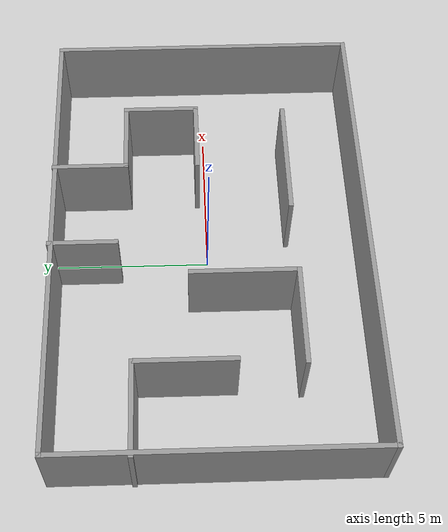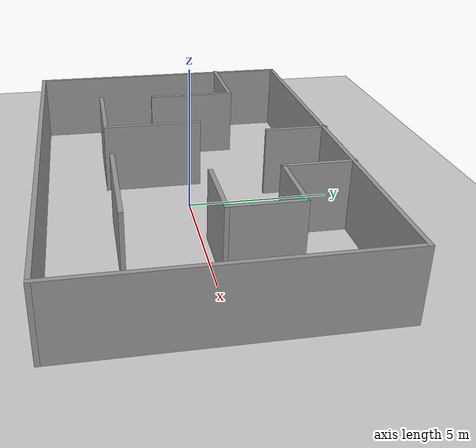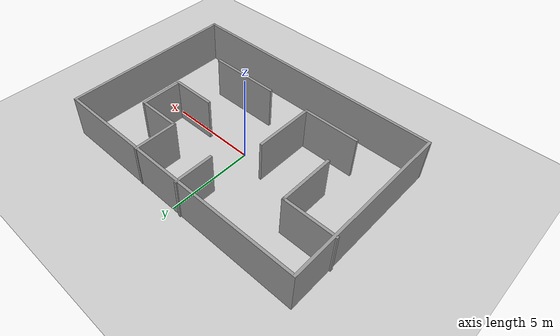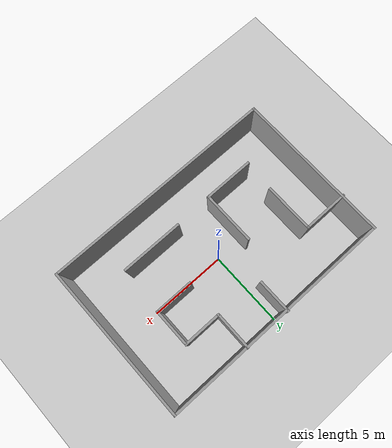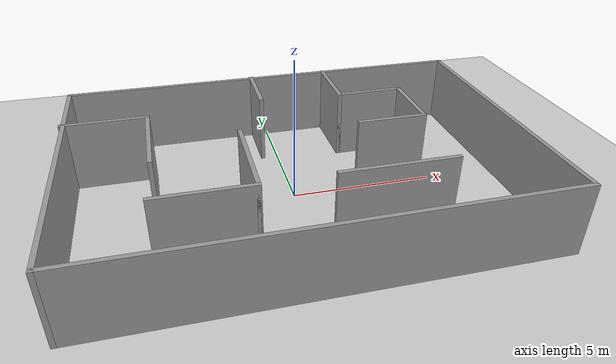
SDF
<sdf version="1.7">
 <world name="default">
  <light name="sun" type="directional">
   <pose>0 0 10 0 -0 0</pose>
   <diffuse>0.8 0.8 0.8 1</diffuse>
   <specular>0.2 0.2 0.2 1</specular>
   <attenuation>
    <range>1000</range>
    <constant>0.9</constant>
    <linear>0.01</linear>
    <quadratic>0.001</quadratic>
   </attenuation>
   <direction>-0.5 0.1 -0.9</direction>
   <spot><inner_angle>0</inner_angle><outer_angle>0</outer_angle><falloff>0</falloff></spot>
  </light>
  <model name="ground_plane">
   <static>1</static>
   <link name="link">
    <collision name="collision">
     <geometry><plane><normal>0 0 1</normal><size>100 100</size></plane></geometry>
     <surface><friction><ode><mu>100</mu><mu2>50</mu2></ode></friction></surface>
    </collision>
    <visual name="visual">
     <cast_shadows>0</cast_shadows>
     <geometry><plane><normal>0 0 1</normal><size>100 100</size></plane></geometry>
     <material>
      <script><uri>file://media/materials/scripts/gazebo.material</uri><name>Gazebo/Grey</name></script>
     </material>
    </visual>
   </link>
  </model>
  <gravity>0 0 -9.8</gravity>
  <magnetic_field>6e-06 2.3e-05 -4.2e-05</magnetic_field>
  <atmosphere type="adiabatic"/>
  <physics type="ode">
   <max_step_size>0.001</max_step_size>
   <real_time_factor>1</real_time_factor>
   <real_time_update_rate>1000</real_time_update_rate>
  </physics>
  <scene><ambient>0.4 0.4 0.4 1</ambient><background>0.7 0.7 0.7 1</background><shadows>1</shadows></scene>
  <audio><device>default</device></audio>
  <spherical_coordinates>
   <surface_model>EARTH_WGS84</surface_model>
   <latitude_deg>0</latitude_deg>
   <longitude_deg>0</longitude_deg>
   <elevation>0</elevation>
   <heading_deg>0</heading_deg>
  </spherical_coordinates>
  <model name="MAZE_ROOM">
   <pose>0.018298 -0.024411 0 0 -0 0</pose>
   <link name="Wall_0">
    <collision name="Wall_0_Collision">
     <geometry><box><size>15.15 0.15 2.5</size></box></geometry>
     <pose>0 0 1.25 0 -0 0</pose>
    </collision>
    <visual name="Wall_0_Visual">
     <pose>0 0 1.25 0 -0 0</pose>
     <geometry><box><size>15.15 0.15 2.5</size></box></geometry>
     <material>
      <script><uri>file://media/materials/scripts/gazebo.material</uri><name>Gazebo/Grey</name></script>
      <ambient>1 1 1 1</ambient>
     </material>
     <meta><layer>0</layer></meta>
    </visual>
    <pose>0.039211 4.96906 0 0 -0 0</pose>
   </link>
   <link name="Wall_1">
    <collision name="Wall_1_Collision">
     <geometry><box><size>10.15 0.15 2.5</size></box></geometry>
     <pose>0 0 1.25 0 -0 0</pose>
    </collision>
    <visual name="Wall_1_Visual">
     <pose>0 0 1.25 0 -0 0</pose>
     <geometry><box><size>10.15 0.15 2.5</size></box></geometry>
     <material>
      <script><uri>file://media/materials/scripts/gazebo.material</uri><name>Gazebo/Grey</name></script>
      <ambient>1 1 1 1</ambient>
     </material>
     <meta><layer>0</layer></meta>
    </visual>
    <pose>7.53921 -0.030941 0 0 -0 -1.5708</pose>
   </link>
   <link name="Wall_12">
    <collision name="Wall_12_Collision">
     <geometry><box><size>4 0.15 2.5</size></box></geometry>
     <pose>0 0 1.25 0 -0 0</pose>
    </collision>
    <visual name="Wall_12_Visual">
     <pose>0 0 1.25 0 -0 0</pose>
     <geometry><box><size>4 0.15 2.5</size></box></geometry>
     <material>
      <script><uri>file://media/materials/scripts/gazebo.material</uri><name>Gazebo/Grey</name></script>
      <ambient>1 1 1 1</ambient>
     </material>
     <meta><layer>0</layer></meta>
    </visual>
    <pose>2.61903 -2.65342 0 0 -0 0</pose>
   </link>
   <link name="Wall_14">
    <collision name="Wall_14_Collision">
     <geometry><box><size>2.5 0.15 2.5</size></box></geometry>
     <pose>0 0 1.25 0 -0 0</pose>
    </collision>
    <visual name="Wall_14_Visual">
     <pose>0 0 1.25 0 -0 0</pose>
     <geometry><box><size>2.5 0.15 2.5</size></box></geometry>
     <material>
      <script><uri>file://media/materials/scripts/gazebo.material</uri><name>Gazebo/Grey</name></script>
      <ambient>1 1 1 1</ambient>
     </material>
     <meta><layer>0</layer></meta>
    </visual>
    <pose>2.37499 3.82164 0 0 -0 -1.5708</pose>
   </link>
   <link name="Wall_15">
    <collision name="Wall_15_Collision">
     <geometry><box><size>2.5 0.15 2.5</size></box></geometry>
     <pose>0 0 1.25 0 -0 0</pose>
    </collision>
    <visual name="Wall_15_Visual">
     <pose>0 0 1.25 0 -0 0</pose>
     <geometry><box><size>2.5 0.15 2.5</size></box></geometry>
     <material>
      <script><uri>file://media/materials/scripts/gazebo.material</uri><name>Gazebo/Grey</name></script>
      <ambient>1 1 1 1</ambient>
     </material>
     <meta><layer>0</layer></meta>
    </visual>
    <pose>3.54999 2.64664 0 0 -0 0</pose>
   </link>
   <link name="Wall_16">
    <collision name="Wall_16_Collision">
     <geometry><box><size>2.5 0.15 2.5</size></box></geometry>
     <pose>0 0 1.25 0 -0 0</pose>
    </collision>
    <visual name="Wall_16_Visual">
     <pose>0 0 1.25 0 -0 0</pose>
     <geometry><box><size>2.5 0.15 2.5</size></box></geometry>
     <material>
      <script><uri>file://media/materials/scripts/gazebo.material</uri><name>Gazebo/Grey</name></script>
      <ambient>1 1 1 1</ambient>
     </material>
     <meta><layer>0</layer></meta>
    </visual>
    <pose>4.72499 1.47164 0 0 -0 -1.5708</pose>
   </link>
   <link name="Wall_17">
    <collision name="Wall_17_Collision">
     <geometry><box><size>2.5 0.15 2.5</size></box></geometry>
     <pose>0 0 1.25 0 -0 0</pose>
    </collision>
    <visual name="Wall_17_Visual">
     <pose>0 0 1.25 0 -0 0</pose>
     <geometry><box><size>2.5 0.15 2.5</size></box></geometry>
     <material>
      <script><uri>file://media/materials/scripts/gazebo.material</uri><name>Gazebo/Grey</name></script>
      <ambient>1 1 1 1</ambient>
     </material>
     <meta><layer>0</layer></meta>
    </visual>
    <pose>3.54999 0.296636 0 0 -0 3.14159</pose>
   </link>
   <link name="Wall_19">
    <collision name="Wall_19_Collision">
     <geometry><box><size>2.25 0.15 2.5</size></box></geometry>
     <pose>0 0 1.25 0 -0 0</pose>
    </collision>
    <visual name="Wall_19_Visual">
     <pose>0 0 1.25 0 -0 0</pose>
     <geometry><box><size>2.25 0.15 2.5</size></box></geometry>
     <material>
      <script><uri>file://media/materials/scripts/gazebo.material</uri><name>Gazebo/Grey</name></script>
      <ambient>1 1 1 1</ambient>
     </material>
     <meta><layer>0</layer></meta>
    </visual>
    <pose>-0.575258 3.98094 0 0 -0 -1.5708</pose>
   </link>
   <link name="Wall_2">
    <collision name="Wall_2_Collision">
     <geometry><box><size>15.15 0.15 2.5</size></box></geometry>
     <pose>0 0 1.25 0 -0 0</pose>
    </collision>
    <visual name="Wall_2_Visual">
     <pose>0 0 1.25 0 -0 0</pose>
     <geometry><box><size>15.15 0.15 2.5</size></box></geometry>
     <material>
      <script><uri>file://media/materials/scripts/gazebo.material</uri><name>Gazebo/Grey</name></script>
      <ambient>1 1 1 1</ambient>
     </material>
     <meta><layer>0</layer></meta>
    </visual>
    <pose>0.039211 -5.03094 0 0 -0 3.14159</pose>
   </link>
   <link name="Wall_3">
    <collision name="Wall_3_Collision">
     <geometry><box><size>10.15 0.15 2.5</size></box></geometry>
     <pose>0 0 1.25 0 -0 0</pose>
    </collision>
    <visual name="Wall_3_Visual">
     <pose>0 0 1.25 0 -0 0</pose>
     <geometry><box><size>10.15 0.15 2.5</size></box></geometry>
     <material>
      <script><uri>file://media/materials/scripts/gazebo.material</uri><name>Gazebo/Grey</name></script>
      <ambient>1 1 1 1</ambient>
     </material>
     <meta><layer>0</layer></meta>
    </visual>
    <pose>-7.46079 -0.030941 0 0 -0 1.5708</pose>
   </link>
   <link name="Wall_5">
    <collision name="Wall_5_Collision">
     <geometry><box><size>3 0.15 2.5</size></box></geometry>
     <pose>0 0 1.25 0 -0 0</pose>
    </collision>
    <visual name="Wall_5_Visual">
     <pose>0 0 1.25 0 -0 0</pose>
     <geometry><box><size>3 0.15 2.5</size></box></geometry>
     <material>
      <script><uri>file://media/materials/scripts/gazebo.material</uri><name>Gazebo/Grey</name></script>
      <ambient>1 1 1 1</ambient>
     </material>
     <meta><layer>0</layer></meta>
    </visual>
    <pose>-6.11421 2.42375 0 0 -0 0</pose>
   </link>
   <link name="Wall_6">
    <collision name="Wall_6_Collision">
     <geometry><box><size>3.25 0.15 2.5</size></box></geometry>
     <pose>0 0 1.25 0 -0 0</pose>
    </collision>
    <visual name="Wall_6_Visual">
     <pose>0 0 1.25 0 -0 0</pose>
     <geometry><box><size>3.25 0.15 2.5</size></box></geometry>
     <material>
      <script><uri>file://media/materials/scripts/gazebo.material</uri><name>Gazebo/Grey</name></script>
      <ambient>1 1 1 1</ambient>
     </material>
     <meta><layer>0</layer></meta>
    </visual>
    <pose>-4.68921 0.873746 0 0 -0 -1.5708</pose>
   </link>
   <link name="Wall_8">
    <collision name="Wall_8_Collision">
     <geometry><box><size>3.25 0.15 2.5</size></box></geometry>
     <pose>0 0 1.25 0 -0 0</pose>
    </collision>
    <visual name="Wall_8_Visual">
     <pose>0 0 1.25 0 -0 0</pose>
     <geometry><box><size>3.25 0.15 2.5</size></box></geometry>
     <material>
      <script><uri>file://media/materials/scripts/gazebo.material</uri><name>Gazebo/Grey</name></script>
      <ambient>1 1 1 1</ambient>
     </material>
     <meta><layer>0</layer></meta>
    </visual>
    <pose>-3.2791 -2.72203 0 0 -0 0</pose>
   </link>
   <link name="Wall_9">
    <collision name="Wall_9_Collision">
     <geometry><box><size>3.5 0.15 2.5</size></box></geometry>
     <pose>0 0 1.25 0 -0 0</pose>
    </collision>
    <visual name="Wall_9_Visual">
     <pose>0 0 1.25 0 -0 0</pose>
     <geometry><box><size>3.5 0.15 2.5</size></box></geometry>
     <material>
      <script><uri>file://media/materials/scripts/gazebo.material</uri><name>Gazebo/Grey</name></script>
      <ambient>1 1 1 1</ambient>
     </material>
     <meta><layer>0</layer></meta>
    </visual>
    <pose>-1.7291 -1.04703 0 0 -0 1.5708</pose>
   </link>
   <static>1</static>
  </model>
 </world>
</sdf>
